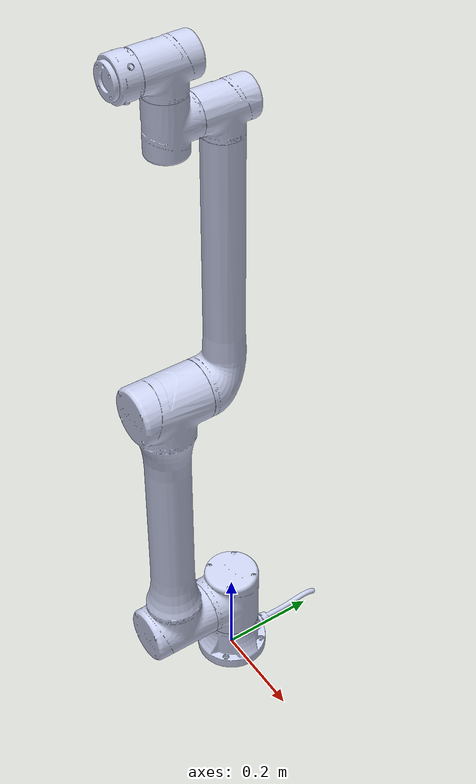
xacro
<?xml version="1.0"?>
<robot xmlns:xacro="http://www.ros.org/wiki/xacro" name="g4">
  <xacro:arg name="prefix" default=""/>
  <xacro:arg name="use_fake_hardware" default="false"/>
  <xacro:arg name="use_simulation" default="false"/>
  <xacro:arg name="robot_ip" default="192.168.6.6"/>
  <xacro:arg name="network_interface" default=""/>
  <xacro:arg name="rtde_frequency" default="250"/>
  <xacro:arg name="rtde_protocol_version" default="3"/>
  <xacro:arg name="initial_state_timeout_ms" default="10000"/>
  <xacro:arg name="initial_positions_file"
    default="$(find vendor_robot_description)/config/initial_positions.yaml"/>
  <xacro:property name="prefix" value="$(arg prefix)"/>
  <xacro:include filename="$(find vendor_robot_description)/urdf/g4.model.xacro"/>
  <xacro:include filename="$(find vendor_robot_description)/urdf/g4.ros2_control.xacro"/>
  <xacro:g4_ros2_control name="${prefix}G4System" prefix="${prefix}"
    use_fake_hardware="$(arg use_fake_hardware)"
    use_simulation="$(arg use_simulation)"
    robot_ip="$(arg robot_ip)"
    network_interface="$(arg network_interface)"
    rtde_frequency="$(arg rtde_frequency)"
    rtde_protocol_version="$(arg rtde_protocol_version)"
    initial_state_timeout_ms="$(arg initial_state_timeout_ms)"
    initial_positions_file="$(arg initial_positions_file)"/>
  <xacro:if value="$(arg use_simulation)">
    <gazebo>
      <plugin filename="libgazebo_ros2_control.so" name="gazebo_ros2_control">
        <parameters>$(find vendor_robot_simulation)/config/controllers.yaml</parameters>
      </plugin>
    </gazebo>
  </xacro:if>
</robot>

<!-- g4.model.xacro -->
<robot xmlns:xacro="http://www.ros.org/wiki/xacro" name="G4">
  <!-- KDL cannot represent inertia on the tree root.  Keep the physical
       base_link inertia and attach it to a massless fixed root. -->
  <link name="${prefix}base"/>
  <joint name="${prefix}base_to_base_link" type="fixed">
    <parent link="${prefix}base"/>
    <child link="${prefix}base_link"/>
  </joint>
  <link
    name="${prefix}base_link">
    <inertial>
      <origin
        xyz="0 0.0018 0.03996"
        rpy="0 0 0" />
      <mass
        value="1.37" />
      <inertia
        ixx="0.00250604357"
        ixy="0"
        ixz="0"
        iyy="0.00300318992"
        iyz="0"
        izz="0.00342068625" />
    </inertial>
    <visual>
      <origin
        xyz="0 0 0"
        rpy="0 0 0" />
      <geometry>
        <mesh
          filename="package://vendor_robot_description/meshes/base_link.STL" />
      </geometry>
      <material
        name="">
        <color
          rgba="0.79216 0.81961 0.93333 1" />
      </material>
    </visual>
    <collision>
      <origin
        xyz="0 0 0"
        rpy="0 0 0" />
      <geometry>
        <mesh
          filename="package://vendor_robot_description/meshes/base_link.STL" />
      </geometry>
    </collision>
  </link>
  <link
    name="${prefix}Link1">
    <inertial>
      <origin
        xyz="0 0 -0.03"
        rpy="0 0 0" />
      <mass
        value="4.3" />
      <inertia
        ixx="0.872229921"
        ixy="0"
        ixz="0"
        iyy="0.01050339401"
        iyz="0"
        izz="0.01160559817" />
    </inertial>
    <visual>
      <origin
        xyz="0 0 0"
        rpy="0 0 0" />
      <geometry>
        <mesh
          filename="package://vendor_robot_description/meshes/shoulder_Link.STL" />
      </geometry>
      <material
        name="">
        <color
          rgba="0.79216 0.81961 0.93333 1" />
      </material>
    </visual>
    <collision>
      <origin
        xyz="0 0 0"
        rpy="0 0 0" />
      <geometry>
        <mesh
          filename="package://vendor_robot_description/meshes/shoulder_Link.STL" />
      </geometry>
    </collision>
  </link>
  <joint
    name="${prefix}joint1"
    type="revolute">
    <origin
      xyz="0 0 0.1675"
      rpy="0 0 0" />
    <parent
      link="${prefix}base_link" />
    <child
      link="${prefix}Link1" />
    <axis
      xyz="0 0 1" />
    <limit
      lower="-6.28"
      upper="6.28"
      effort="183.6"
      velocity="3.65" />
  </joint>
  <link
    name="${prefix}Link2">
    <inertial>
      <origin
        xyz="0.313 0 0.1448"
        rpy="0 0 0" />
      <mass
        value="11.2" />
      <inertia
        ixx="0.03283835802"
        ixy="0"
        ixz="0"
        iyy="1.0876961879"
        iyz="0"
        izz="1.09389997161" />
    </inertial>
    <visual>
      <origin
        xyz="0 0 0"
        rpy="0 0 0" />
      <geometry>
        <mesh
          filename="package://vendor_robot_description/meshes/upper_arm_Link.STL" />
      </geometry>
      <material
        name="">
        <color
          rgba="0.79216 0.81961 0.93333 1" />
      </material>
    </visual>
    <collision>
      <origin
        xyz="0 0 0"
        rpy="0 0 0" />
      <geometry>
        <mesh
          filename="package://vendor_robot_description/meshes/upper_arm_Link.STL" />
      </geometry>
    </collision>
  </link>
  <joint
    name="${prefix}joint2"
    type="revolute">
    <origin
      xyz="0 0 0"
      rpy="1.5708 -1.5708 0" />
    <parent
      link="${prefix}Link1" />
    <child
      link="${prefix}Link2" />
    <axis
      xyz="0 0 1" />
    <limit
      lower="-6.28"
      upper="6.28"
      effort="183.6"
      velocity="3.65" />
  </joint>
  <link
    name="${prefix}Link3">
    <inertial>
      <origin
        xyz="0.3489 0 0.0058"
        rpy="0 0 0" />
      <mass
        value="3.65" />
      <inertia
        ixx="0.0035204036"
        ixy="0"
        ixz="0"
        iyy="0.1512600722"
        iyz="0"
        izz="0.1515908914" />
    </inertial>
    <visual>
      <origin
        xyz="0 0 0"
        rpy="0 0 0" />
      <geometry>
        <mesh
          filename="package://vendor_robot_description/meshes/fore_arm_Link.STL" />
      </geometry>
      <material
        name="">
        <color
          rgba="0.79216 0.81961 0.93333 1" />
      </material>
    </visual>
    <collision>
      <origin
        xyz="0 0 0"
        rpy="0 0 0" />
      <geometry>
        <mesh
          filename="package://vendor_robot_description/meshes/fore_arm_Link.STL" />
      </geometry>
    </collision>
  </link>
  <joint
    name="${prefix}joint3"
    type="revolute">
    <origin
      xyz="0.626 0 0.0143"
      rpy="0 0 0" />
    <parent
      link="${prefix}Link2" />
    <child
      link="${prefix}Link3" />
    <axis
      xyz="0 0 1" />
    <limit
      lower="-2.87"
      upper="2.87"
      effort="183.6"
      velocity="3.65" />
  </joint>
  <link
    name="${prefix}Link4">
    <inertial>
      <origin
        xyz="0 0.0225 0"
        rpy="0 0 0" />
      <mass
        value="1.4" />
      <inertia
        ixx="0.00141971076"
        ixy="0"
        ixz="0"
        iyy="0.00197952586"
        iyz="0"
        izz="0.0021832279" />
    </inertial>
    <visual>
      <origin
        xyz="0 0 0"
        rpy="0 0 0" />
      <geometry>
        <mesh
          filename="package://vendor_robot_description/meshes/wrist1_Link.STL" />
      </geometry>
      <material
        name="">
        <color
          rgba="0.79216 0.81961 0.93333 1" />
      </material>
    </visual>
    <collision>
      <origin
        xyz="0 0 0"
        rpy="0 0 0" />
      <geometry>
        <mesh
          filename="package://vendor_robot_description/meshes/wrist1_Link.STL" />
      </geometry>
    </collision>
  </link>
  <joint
    name="${prefix}joint4"
    type="revolute">
    <origin
      xyz="0.575 0 0.106"
      rpy="0 0 -1.5708" />
    <parent
      link="${prefix}Link3" />
    <child
      link="${prefix}Link4" />
    <axis
      xyz="0 0 1" />
    <limit
      lower="-6.28"
      upper="6.28"
      effort="32.4"
      velocity="6.28" />
  </joint>
  <link
    name="${prefix}Link5">
    <inertial>
      <origin
        xyz="0 -0.0225 0"
        rpy="0 0 0" />
      <mass
        value="1.4" />
      <inertia
        ixx="0.0014178"
        ixy="0"
        ixz="0"
        iyy="0.0019783"
        iyz="0"
        izz="0.0021826" />
    </inertial>
    <visual>
      <origin
        xyz="0 0 0"
        rpy="0 0 0" />
      <geometry>
        <mesh
          filename="package://vendor_robot_description/meshes/wrist2_Link.STL" />
      </geometry>
      <material
        name="">
        <color
          rgba="0.79216 0.81961 0.93333 1" />
      </material>
    </visual>
    <collision>
      <origin
        xyz="0 0 0"
        rpy="0 0 0" />
      <geometry>
        <mesh
          filename="package://vendor_robot_description/meshes/wrist2_Link.STL" />
      </geometry>
    </collision>
  </link>
  <joint
    name="${prefix}joint5"
    type="revolute">
    <origin
      xyz="0 0.106 0"
      rpy="-1.5708 0 0" />
    <parent
      link="${prefix}Link4" />
    <child
      link="${prefix}Link5" />
    <axis
      xyz="0 0 1" />
    <limit
      lower="-6.28"
      upper="6.28"
      effort="32.4"
      velocity="6.28" />
  </joint>
  <link
    name="${prefix}Link6">
    <inertial>
      <origin
        xyz="0 0 -0.024"
        rpy="0 0 0" />
      <mass
        value="0.3" />
      <inertia
        ixx="0.00028678895"
        ixy="0"
        ixz="0"
        iyy="0.00028756582"
        iyz="0"
        izz="0.00040064109" />
    </inertial>
    <visual>
      <origin
        xyz="0 0 0"
        rpy="0 0 0" />
      <geometry>
        <mesh
          filename="package://vendor_robot_description/meshes/wrist3_Link.STL" />
      </geometry>
      <material
        name="">
        <color
          rgba="0.79216 0.81961 0.93333 1" />
      </material>
    </visual>
    <collision>
      <origin
        xyz="0 0 0"
        rpy="0 0 0" />
      <geometry>
        <mesh
          filename="package://vendor_robot_description/meshes/wrist3_Link.STL" />
      </geometry>
    </collision>
  </link>
  <joint
    name="${prefix}joint6"
    type="revolute">
    <origin
      xyz="0 -0.0978 0"
      rpy="1.5708 0 0" />
    <parent
      link="${prefix}Link5" />
    <child
      link="${prefix}Link6" />
    <axis
      xyz="0 0 1" />
    <limit
      lower="-6.28"
      upper="6.28"
      effort="32.4"
      velocity="6.28" />
  </joint>
</robot>
